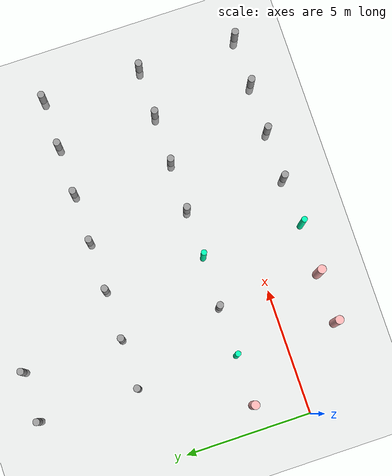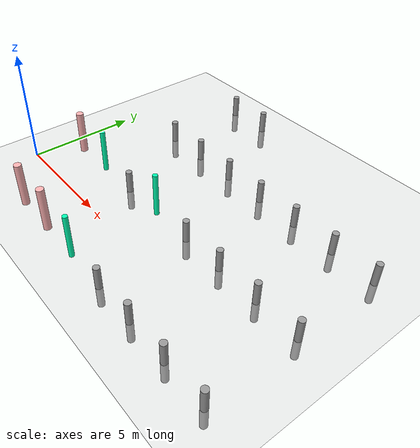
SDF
<sdf version="1.6">
 <world name="default">
  <model name="ground_plane">
   <static>1</static>
   <link name="link">
    <collision name="collision">
     <geometry><plane><normal>0 0 1</normal><size>100 100</size></plane></geometry>
     <surface><friction><ode><mu>100</mu><mu2>50</mu2></ode></friction></surface>
    </collision>
    <visual name="visual">
     <cast_shadows>0</cast_shadows>
     <geometry><plane><normal>0 0 1</normal><size>100 100</size></plane></geometry>
     <material>
      <script><uri>file://media/materials/scripts/gazebo.material</uri><name>Gazebo/Grey</name></script>
     </material>
    </visual>
   </link>
  </model>
  <model name="my_cylinder014_clone_60">
   <pose>9 -2 0 0 -0 0</pose>
   <link name="my_cylinder014::link">
    <inertial>
     <mass>1</mass>
     <inertia><ixx>0.145833</ixx><ixy>0</ixy><ixz>0</ixz><iyy>0.145833</iyy><iyz>0</iyz><izz>0.125</izz></inertia>
    </inertial>
    <visual name="visual">
     <geometry><cylinder><radius>0.14</radius><length>2</length></cylinder></geometry>
     <material>
      <script><name>Gazebo/Grey</name><uri>file://media/materials/scripts/gazebo.material</uri></script>
      <ambient>0.3 0.3 0.3 1</ambient>
      <diffuse>0.7 0.7 0.7 1</diffuse>
      <specular>1 0.01 0.01 1</specular>
      <emissive>0 0 0 1</emissive>
      <shader type="vertex"><normal_map>__default__</normal_map></shader>
     </material>
    </visual>
    <collision name="collision">
     <geometry><cylinder><radius>0.14</radius><length>2</length></cylinder></geometry>
     <surface>
      <friction>
       <ode><mu>1</mu><mu2>1</mu2><fdir1>0 0 0</fdir1><slip1>0</slip1><slip2>0</slip2></ode>
       <torsional>
        <coefficient>1</coefficient>
        <patch_radius>0</patch_radius>
        <surface_radius>0</surface_radius>
        <use_patch_radius>1</use_patch_radius>
        <ode><slip>0</slip></ode>
       </torsional>
      </friction>
      <bounce><restitution_coefficient>0</restitution_coefficient><threshold>1e+06</threshold></bounce>
      <contact>
       <collide_without_contact>0</collide_without_contact>
       <collide_without_contact_bitmask>1</collide_without_contact_bitmask>
       <collide_bitmask>1</collide_bitmask>
       <ode>
        <soft_cfm>0</soft_cfm>
        <soft_erp>0.2</soft_erp>
        <kp>1e+13</kp>
        <kd>1</kd>
        <max_vel>0.01</max_vel>
        <min_depth>0</min_depth>
       </ode>
       <bullet>
        <split_impulse>1</split_impulse>
        <split_impulse_penetration_threshold>-0.01</split_impulse_penetration_threshold>
        <soft_cfm>0</soft_cfm>
        <soft_erp>0.2</soft_erp>
        <kp>1e+13</kp>
        <kd>1</kd>
       </bullet>
      </contact>
     </surface>
    </collision>
   </link>
   <static>1</static>
  </model>
  <model name="my_cylinder014_clone_61">
   <pose>11 -2 0 0 -0 0</pose>
   <link name="my_cylinder014::link">
    <inertial>
     <mass>1</mass>
     <inertia><ixx>0.145833</ixx><ixy>0</ixy><ixz>0</ixz><iyy>0.145833</iyy><iyz>0</iyz><izz>0.125</izz></inertia>
    </inertial>
    <visual name="visual">
     <geometry><cylinder><radius>0.14</radius><length>2</length></cylinder></geometry>
     <material>
      <script><name>Gazebo/Grey</name><uri>file://media/materials/scripts/gazebo.material</uri></script>
      <ambient>0.3 0.3 0.3 1</ambient>
      <diffuse>0.7 0.7 0.7 1</diffuse>
      <specular>1 0.01 0.01 1</specular>
      <emissive>0 0 0 1</emissive>
      <shader type="vertex"><normal_map>__default__</normal_map></shader>
     </material>
    </visual>
    <collision name="collision">
     <geometry><cylinder><radius>0.14</radius><length>2</length></cylinder></geometry>
     <surface>
      <friction>
       <ode><mu>1</mu><mu2>1</mu2><fdir1>0 0 0</fdir1><slip1>0</slip1><slip2>0</slip2></ode>
       <torsional>
        <coefficient>1</coefficient>
        <patch_radius>0</patch_radius>
        <surface_radius>0</surface_radius>
        <use_patch_radius>1</use_patch_radius>
        <ode><slip>0</slip></ode>
       </torsional>
      </friction>
      <bounce><restitution_coefficient>0</restitution_coefficient><threshold>1e+06</threshold></bounce>
      <contact>
       <collide_without_contact>0</collide_without_contact>
       <collide_without_contact_bitmask>1</collide_without_contact_bitmask>
       <collide_bitmask>1</collide_bitmask>
       <ode>
        <soft_cfm>0</soft_cfm>
        <soft_erp>0.2</soft_erp>
        <kp>1e+13</kp>
        <kd>1</kd>
        <max_vel>0.01</max_vel>
        <min_depth>0</min_depth>
       </ode>
       <bullet>
        <split_impulse>1</split_impulse>
        <split_impulse_penetration_threshold>-0.01</split_impulse_penetration_threshold>
        <soft_cfm>0</soft_cfm>
        <soft_erp>0.2</soft_erp>
        <kp>1e+13</kp>
        <kd>1</kd>
       </bullet>
      </contact>
     </surface>
    </collision>
   </link>
   <static>1</static>
  </model>
  <model name="my_cylinder014_clone_62">
   <pose>13 -2 0 0 -0 0</pose>
   <link name="my_cylinder014::link">
    <inertial>
     <mass>1</mass>
     <inertia><ixx>0.145833</ixx><ixy>0</ixy><ixz>0</ixz><iyy>0.145833</iyy><iyz>0</iyz><izz>0.125</izz></inertia>
    </inertial>
    <visual name="visual">
     <geometry><cylinder><radius>0.14</radius><length>2</length></cylinder></geometry>
     <material>
      <script><name>Gazebo/Grey</name><uri>file://media/materials/scripts/gazebo.material</uri></script>
      <ambient>0.3 0.3 0.3 1</ambient>
      <diffuse>0.7 0.7 0.7 1</diffuse>
      <specular>1 0.01 0.01 1</specular>
      <emissive>0 0 0 1</emissive>
      <shader type="vertex"><normal_map>__default__</normal_map></shader>
     </material>
    </visual>
    <collision name="collision">
     <geometry><cylinder><radius>0.14</radius><length>2</length></cylinder></geometry>
     <surface>
      <friction>
       <ode><mu>1</mu><mu2>1</mu2><fdir1>0 0 0</fdir1><slip1>0</slip1><slip2>0</slip2></ode>
       <torsional>
        <coefficient>1</coefficient>
        <patch_radius>0</patch_radius>
        <surface_radius>0</surface_radius>
        <use_patch_radius>1</use_patch_radius>
        <ode><slip>0</slip></ode>
       </torsional>
      </friction>
      <bounce><restitution_coefficient>0</restitution_coefficient><threshold>1e+06</threshold></bounce>
      <contact>
       <collide_without_contact>0</collide_without_contact>
       <collide_without_contact_bitmask>1</collide_without_contact_bitmask>
       <collide_bitmask>1</collide_bitmask>
       <ode>
        <soft_cfm>0</soft_cfm>
        <soft_erp>0.2</soft_erp>
        <kp>1e+13</kp>
        <kd>1</kd>
        <max_vel>0.01</max_vel>
        <min_depth>0</min_depth>
       </ode>
       <bullet>
        <split_impulse>1</split_impulse>
        <split_impulse_penetration_threshold>-0.01</split_impulse_penetration_threshold>
        <soft_cfm>0</soft_cfm>
        <soft_erp>0.2</soft_erp>
        <kp>1e+13</kp>
        <kd>1</kd>
       </bullet>
      </contact>
     </surface>
    </collision>
   </link>
   <static>1</static>
  </model>
  <model name="my_cylinder014_clone_63">
   <pose>15 -2 0 0 -0 0</pose>
   <link name="my_cylinder014::link">
    <inertial>
     <mass>1</mass>
     <inertia><ixx>0.145833</ixx><ixy>0</ixy><ixz>0</ixz><iyy>0.145833</iyy><iyz>0</iyz><izz>0.125</izz></inertia>
    </inertial>
    <visual name="visual">
     <geometry><cylinder><radius>0.14</radius><length>2</length></cylinder></geometry>
     <material>
      <script><name>Gazebo/Grey</name><uri>file://media/materials/scripts/gazebo.material</uri></script>
      <ambient>0.3 0.3 0.3 1</ambient>
      <diffuse>0.7 0.7 0.7 1</diffuse>
      <specular>1 0.01 0.01 1</specular>
      <emissive>0 0 0 1</emissive>
      <shader type="vertex"><normal_map>__default__</normal_map></shader>
     </material>
    </visual>
    <collision name="collision">
     <geometry><cylinder><radius>0.14</radius><length>2</length></cylinder></geometry>
     <surface>
      <friction>
       <ode><mu>1</mu><mu2>1</mu2><fdir1>0 0 0</fdir1><slip1>0</slip1><slip2>0</slip2></ode>
       <torsional>
        <coefficient>1</coefficient>
        <patch_radius>0</patch_radius>
        <surface_radius>0</surface_radius>
        <use_patch_radius>1</use_patch_radius>
        <ode><slip>0</slip></ode>
       </torsional>
      </friction>
      <bounce><restitution_coefficient>0</restitution_coefficient><threshold>1e+06</threshold></bounce>
      <contact>
       <collide_without_contact>0</collide_without_contact>
       <collide_without_contact_bitmask>1</collide_without_contact_bitmask>
       <collide_bitmask>1</collide_bitmask>
       <ode>
        <soft_cfm>0</soft_cfm>
        <soft_erp>0.2</soft_erp>
        <kp>1e+13</kp>
        <kd>1</kd>
        <max_vel>0.01</max_vel>
        <min_depth>0</min_depth>
       </ode>
       <bullet>
        <split_impulse>1</split_impulse>
        <split_impulse_penetration_threshold>-0.01</split_impulse_penetration_threshold>
        <soft_cfm>0</soft_cfm>
        <soft_erp>0.2</soft_erp>
        <kp>1e+13</kp>
        <kd>1</kd>
       </bullet>
      </contact>
     </surface>
    </collision>
   </link>
   <static>1</static>
  </model>
  <model name="my_cylinder014_clone_74">
   <pose>5 2 0 0 -0 0</pose>
   <link name="my_cylinder014::link">
    <inertial>
     <mass>1</mass>
     <inertia><ixx>0.145833</ixx><ixy>0</ixy><ixz>0</ixz><iyy>0.145833</iyy><iyz>0</iyz><izz>0.125</izz></inertia>
    </inertial>
    <visual name="visual">
     <geometry><cylinder><radius>0.14</radius><length>2</length></cylinder></geometry>
     <material>
      <script><name>Gazebo/Grey</name><uri>file://media/materials/scripts/gazebo.material</uri></script>
      <ambient>0.3 0.3 0.3 1</ambient>
      <diffuse>0.7 0.7 0.7 1</diffuse>
      <specular>1 0.01 0.01 1</specular>
      <emissive>0 0 0 1</emissive>
      <shader type="vertex"><normal_map>__default__</normal_map></shader>
     </material>
    </visual>
    <collision name="collision">
     <geometry><cylinder><radius>0.14</radius><length>2</length></cylinder></geometry>
     <surface>
      <friction>
       <ode><mu>1</mu><mu2>1</mu2><fdir1>0 0 0</fdir1><slip1>0</slip1><slip2>0</slip2></ode>
       <torsional>
        <coefficient>1</coefficient>
        <patch_radius>0</patch_radius>
        <surface_radius>0</surface_radius>
        <use_patch_radius>1</use_patch_radius>
        <ode><slip>0</slip></ode>
       </torsional>
      </friction>
      <bounce><restitution_coefficient>0</restitution_coefficient><threshold>1e+06</threshold></bounce>
      <contact>
       <collide_without_contact>0</collide_without_contact>
       <collide_without_contact_bitmask>1</collide_without_contact_bitmask>
       <collide_bitmask>1</collide_bitmask>
       <ode>
        <soft_cfm>0</soft_cfm>
        <soft_erp>0.2</soft_erp>
        <kp>1e+13</kp>
        <kd>1</kd>
        <max_vel>0.01</max_vel>
        <min_depth>0</min_depth>
       </ode>
       <bullet>
        <split_impulse>1</split_impulse>
        <split_impulse_penetration_threshold>-0.01</split_impulse_penetration_threshold>
        <soft_cfm>0</soft_cfm>
        <soft_erp>0.2</soft_erp>
        <kp>1e+13</kp>
        <kd>1</kd>
       </bullet>
      </contact>
     </surface>
    </collision>
   </link>
   <static>1</static>
  </model>
  <model name="my_cylinder014_clone_76">
   <pose>9 2 0 0 -0 0</pose>
   <link name="my_cylinder014::link">
    <inertial>
     <mass>1</mass>
     <inertia><ixx>0.145833</ixx><ixy>0</ixy><ixz>0</ixz><iyy>0.145833</iyy><iyz>0</iyz><izz>0.125</izz></inertia>
    </inertial>
    <visual name="visual">
     <geometry><cylinder><radius>0.14</radius><length>2</length></cylinder></geometry>
     <material>
      <script><name>Gazebo/Grey</name><uri>file://media/materials/scripts/gazebo.material</uri></script>
      <ambient>0.3 0.3 0.3 1</ambient>
      <diffuse>0.7 0.7 0.7 1</diffuse>
      <specular>1 0.01 0.01 1</specular>
      <emissive>0 0 0 1</emissive>
      <shader type="vertex"><normal_map>__default__</normal_map></shader>
     </material>
    </visual>
    <collision name="collision">
     <geometry><cylinder><radius>0.14</radius><length>2</length></cylinder></geometry>
     <surface>
      <friction>
       <ode><mu>1</mu><mu2>1</mu2><fdir1>0 0 0</fdir1><slip1>0</slip1><slip2>0</slip2></ode>
       <torsional>
        <coefficient>1</coefficient>
        <patch_radius>0</patch_radius>
        <surface_radius>0</surface_radius>
        <use_patch_radius>1</use_patch_radius>
        <ode><slip>0</slip></ode>
       </torsional>
      </friction>
      <bounce><restitution_coefficient>0</restitution_coefficient><threshold>1e+06</threshold></bounce>
      <contact>
       <collide_without_contact>0</collide_without_contact>
       <collide_without_contact_bitmask>1</collide_without_contact_bitmask>
       <collide_bitmask>1</collide_bitmask>
       <ode>
        <soft_cfm>0</soft_cfm>
        <soft_erp>0.2</soft_erp>
        <kp>1e+13</kp>
        <kd>1</kd>
        <max_vel>0.01</max_vel>
        <min_depth>0</min_depth>
       </ode>
       <bullet>
        <split_impulse>1</split_impulse>
        <split_impulse_penetration_threshold>-0.01</split_impulse_penetration_threshold>
        <soft_cfm>0</soft_cfm>
        <soft_erp>0.2</soft_erp>
        <kp>1e+13</kp>
        <kd>1</kd>
       </bullet>
      </contact>
     </surface>
    </collision>
   </link>
   <static>1</static>
  </model>
  <model name="my_cylinder014_clone_77">
   <pose>11 2 0 0 -0 0</pose>
   <link name="my_cylinder014::link">
    <inertial>
     <mass>1</mass>
     <inertia><ixx>0.145833</ixx><ixy>0</ixy><ixz>0</ixz><iyy>0.145833</iyy><iyz>0</iyz><izz>0.125</izz></inertia>
    </inertial>
    <visual name="visual">
     <geometry><cylinder><radius>0.14</radius><length>2</length></cylinder></geometry>
     <material>
      <script><name>Gazebo/Grey</name><uri>file://media/materials/scripts/gazebo.material</uri></script>
      <ambient>0.3 0.3 0.3 1</ambient>
      <diffuse>0.7 0.7 0.7 1</diffuse>
      <specular>1 0.01 0.01 1</specular>
      <emissive>0 0 0 1</emissive>
      <shader type="vertex"><normal_map>__default__</normal_map></shader>
     </material>
    </visual>
    <collision name="collision">
     <geometry><cylinder><radius>0.14</radius><length>2</length></cylinder></geometry>
     <surface>
      <friction>
       <ode><mu>1</mu><mu2>1</mu2><fdir1>0 0 0</fdir1><slip1>0</slip1><slip2>0</slip2></ode>
       <torsional>
        <coefficient>1</coefficient>
        <patch_radius>0</patch_radius>
        <surface_radius>0</surface_radius>
        <use_patch_radius>1</use_patch_radius>
        <ode><slip>0</slip></ode>
       </torsional>
      </friction>
      <bounce><restitution_coefficient>0</restitution_coefficient><threshold>1e+06</threshold></bounce>
      <contact>
       <collide_without_contact>0</collide_without_contact>
       <collide_without_contact_bitmask>1</collide_without_contact_bitmask>
       <collide_bitmask>1</collide_bitmask>
       <ode>
        <soft_cfm>0</soft_cfm>
        <soft_erp>0.2</soft_erp>
        <kp>1e+13</kp>
        <kd>1</kd>
        <max_vel>0.01</max_vel>
        <min_depth>0</min_depth>
       </ode>
       <bullet>
        <split_impulse>1</split_impulse>
        <split_impulse_penetration_threshold>-0.01</split_impulse_penetration_threshold>
        <soft_cfm>0</soft_cfm>
        <soft_erp>0.2</soft_erp>
        <kp>1e+13</kp>
        <kd>1</kd>
       </bullet>
      </contact>
     </surface>
    </collision>
   </link>
   <static>1</static>
  </model>
  <model name="my_cylinder014_clone_78">
   <pose>13 2 0 0 -0 0</pose>
   <link name="my_cylinder014::link">
    <inertial>
     <mass>1</mass>
     <inertia><ixx>0.145833</ixx><ixy>0</ixy><ixz>0</ixz><iyy>0.145833</iyy><iyz>0</iyz><izz>0.125</izz></inertia>
    </inertial>
    <visual name="visual">
     <geometry><cylinder><radius>0.14</radius><length>2</length></cylinder></geometry>
     <material>
      <script><name>Gazebo/Grey</name><uri>file://media/materials/scripts/gazebo.material</uri></script>
      <ambient>0.3 0.3 0.3 1</ambient>
      <diffuse>0.7 0.7 0.7 1</diffuse>
      <specular>1 0.01 0.01 1</specular>
      <emissive>0 0 0 1</emissive>
      <shader type="vertex"><normal_map>__default__</normal_map></shader>
     </material>
    </visual>
    <collision name="collision">
     <geometry><cylinder><radius>0.14</radius><length>2</length></cylinder></geometry>
     <surface>
      <friction>
       <ode><mu>1</mu><mu2>1</mu2><fdir1>0 0 0</fdir1><slip1>0</slip1><slip2>0</slip2></ode>
       <torsional>
        <coefficient>1</coefficient>
        <patch_radius>0</patch_radius>
        <surface_radius>0</surface_radius>
        <use_patch_radius>1</use_patch_radius>
        <ode><slip>0</slip></ode>
       </torsional>
      </friction>
      <bounce><restitution_coefficient>0</restitution_coefficient><threshold>1e+06</threshold></bounce>
      <contact>
       <collide_without_contact>0</collide_without_contact>
       <collide_without_contact_bitmask>1</collide_without_contact_bitmask>
       <collide_bitmask>1</collide_bitmask>
       <ode>
        <soft_cfm>0</soft_cfm>
        <soft_erp>0.2</soft_erp>
        <kp>1e+13</kp>
        <kd>1</kd>
        <max_vel>0.01</max_vel>
        <min_depth>0</min_depth>
       </ode>
       <bullet>
        <split_impulse>1</split_impulse>
        <split_impulse_penetration_threshold>-0.01</split_impulse_penetration_threshold>
        <soft_cfm>0</soft_cfm>
        <soft_erp>0.2</soft_erp>
        <kp>1e+13</kp>
        <kd>1</kd>
       </bullet>
      </contact>
     </surface>
    </collision>
   </link>
   <static>1</static>
  </model>
  <model name="my_cylinder014_clone_79">
   <pose>15 2 0 0 -0 0</pose>
   <link name="my_cylinder014::link">
    <inertial>
     <mass>1</mass>
     <inertia><ixx>0.145833</ixx><ixy>0</ixy><ixz>0</ixz><iyy>0.145833</iyy><iyz>0</iyz><izz>0.125</izz></inertia>
    </inertial>
    <visual name="visual">
     <geometry><cylinder><radius>0.14</radius><length>2</length></cylinder></geometry>
     <material>
      <script><name>Gazebo/Grey</name><uri>file://media/materials/scripts/gazebo.material</uri></script>
      <ambient>0.3 0.3 0.3 1</ambient>
      <diffuse>0.7 0.7 0.7 1</diffuse>
      <specular>1 0.01 0.01 1</specular>
      <emissive>0 0 0 1</emissive>
      <shader type="vertex"><normal_map>__default__</normal_map></shader>
     </material>
    </visual>
    <collision name="collision">
     <geometry><cylinder><radius>0.14</radius><length>2</length></cylinder></geometry>
     <surface>
      <friction>
       <ode><mu>1</mu><mu2>1</mu2><fdir1>0 0 0</fdir1><slip1>0</slip1><slip2>0</slip2></ode>
       <torsional>
        <coefficient>1</coefficient>
        <patch_radius>0</patch_radius>
        <surface_radius>0</surface_radius>
        <use_patch_radius>1</use_patch_radius>
        <ode><slip>0</slip></ode>
       </torsional>
      </friction>
      <bounce><restitution_coefficient>0</restitution_coefficient><threshold>1e+06</threshold></bounce>
      <contact>
       <collide_without_contact>0</collide_without_contact>
       <collide_without_contact_bitmask>1</collide_without_contact_bitmask>
       <collide_bitmask>1</collide_bitmask>
       <ode>
        <soft_cfm>0</soft_cfm>
        <soft_erp>0.2</soft_erp>
        <kp>1e+13</kp>
        <kd>1</kd>
        <max_vel>0.01</max_vel>
        <min_depth>0</min_depth>
       </ode>
       <bullet>
        <split_impulse>1</split_impulse>
        <split_impulse_penetration_threshold>-0.01</split_impulse_penetration_threshold>
        <soft_cfm>0</soft_cfm>
        <soft_erp>0.2</soft_erp>
        <kp>1e+13</kp>
        <kd>1</kd>
       </bullet>
      </contact>
     </surface>
    </collision>
   </link>
   <static>1</static>
  </model>
  <model name="my_cylinder014_clone_89">
   <pose>3 6 0 0 -0 0</pose>
   <link name="my_cylinder014::link">
    <inertial>
     <mass>1</mass>
     <inertia><ixx>0.145833</ixx><ixy>0</ixy><ixz>0</ixz><iyy>0.145833</iyy><iyz>0</iyz><izz>0.125</izz></inertia>
    </inertial>
    <visual name="visual">
     <geometry><cylinder><radius>0.14</radius><length>2</length></cylinder></geometry>
     <material>
      <script><name>Gazebo/Grey</name><uri>file://media/materials/scripts/gazebo.material</uri></script>
      <ambient>0.3 0.3 0.3 1</ambient>
      <diffuse>0.7 0.7 0.7 1</diffuse>
      <specular>1 0.01 0.01 1</specular>
      <emissive>0 0 0 1</emissive>
      <shader type="vertex"><normal_map>__default__</normal_map></shader>
     </material>
    </visual>
    <collision name="collision">
     <geometry><cylinder><radius>0.14</radius><length>2</length></cylinder></geometry>
     <surface>
      <friction>
       <ode><mu>1</mu><mu2>1</mu2><fdir1>0 0 0</fdir1><slip1>0</slip1><slip2>0</slip2></ode>
       <torsional>
        <coefficient>1</coefficient>
        <patch_radius>0</patch_radius>
        <surface_radius>0</surface_radius>
        <use_patch_radius>1</use_patch_radius>
        <ode><slip>0</slip></ode>
       </torsional>
      </friction>
      <bounce><restitution_coefficient>0</restitution_coefficient><threshold>1e+06</threshold></bounce>
      <contact>
       <collide_without_contact>0</collide_without_contact>
       <collide_without_contact_bitmask>1</collide_without_contact_bitmask>
       <collide_bitmask>1</collide_bitmask>
       <ode>
        <soft_cfm>0</soft_cfm>
        <soft_erp>0.2</soft_erp>
        <kp>1e+13</kp>
        <kd>1</kd>
        <max_vel>0.01</max_vel>
        <min_depth>0</min_depth>
       </ode>
       <bullet>
        <split_impulse>1</split_impulse>
        <split_impulse_penetration_threshold>-0.01</split_impulse_penetration_threshold>
        <soft_cfm>0</soft_cfm>
        <soft_erp>0.2</soft_erp>
        <kp>1e+13</kp>
        <kd>1</kd>
       </bullet>
      </contact>
     </surface>
    </collision>
   </link>
   <static>1</static>
  </model>
  <model name="my_cylinder014_clone_90">
   <pose>5 6 0 0 -0 0</pose>
   <link name="my_cylinder014::link">
    <inertial>
     <mass>1</mass>
     <inertia><ixx>0.145833</ixx><ixy>0</ixy><ixz>0</ixz><iyy>0.145833</iyy><iyz>0</iyz><izz>0.125</izz></inertia>
    </inertial>
    <visual name="visual">
     <geometry><cylinder><radius>0.14</radius><length>2</length></cylinder></geometry>
     <material>
      <script><name>Gazebo/Grey</name><uri>file://media/materials/scripts/gazebo.material</uri></script>
      <ambient>0.3 0.3 0.3 1</ambient>
      <diffuse>0.7 0.7 0.7 1</diffuse>
      <specular>1 0.01 0.01 1</specular>
      <emissive>0 0 0 1</emissive>
      <shader type="vertex"><normal_map>__default__</normal_map></shader>
     </material>
    </visual>
    <collision name="collision">
     <geometry><cylinder><radius>0.14</radius><length>2</length></cylinder></geometry>
     <surface>
      <friction>
       <ode><mu>1</mu><mu2>1</mu2><fdir1>0 0 0</fdir1><slip1>0</slip1><slip2>0</slip2></ode>
       <torsional>
        <coefficient>1</coefficient>
        <patch_radius>0</patch_radius>
        <surface_radius>0</surface_radius>
        <use_patch_radius>1</use_patch_radius>
        <ode><slip>0</slip></ode>
       </torsional>
      </friction>
      <bounce><restitution_coefficient>0</restitution_coefficient><threshold>1e+06</threshold></bounce>
      <contact>
       <collide_without_contact>0</collide_without_contact>
       <collide_without_contact_bitmask>1</collide_without_contact_bitmask>
       <collide_bitmask>1</collide_bitmask>
       <ode>
        <soft_cfm>0</soft_cfm>
        <soft_erp>0.2</soft_erp>
        <kp>1e+13</kp>
        <kd>1</kd>
        <max_vel>0.01</max_vel>
        <min_depth>0</min_depth>
       </ode>
       <bullet>
        <split_impulse>1</split_impulse>
        <split_impulse_penetration_threshold>-0.01</split_impulse_penetration_threshold>
        <soft_cfm>0</soft_cfm>
        <soft_erp>0.2</soft_erp>
        <kp>1e+13</kp>
        <kd>1</kd>
       </bullet>
      </contact>
     </surface>
    </collision>
   </link>
   <static>1</static>
  </model>
  <model name="my_cylinder014_clone_91">
   <pose>7 6 0 0 -0 0</pose>
   <link name="my_cylinder014::link">
    <inertial>
     <mass>1</mass>
     <inertia><ixx>0.145833</ixx><ixy>0</ixy><ixz>0</ixz><iyy>0.145833</iyy><iyz>0</iyz><izz>0.125</izz></inertia>
    </inertial>
    <visual name="visual">
     <geometry><cylinder><radius>0.14</radius><length>2</length></cylinder></geometry>
     <material>
      <script><name>Gazebo/Grey</name><uri>file://media/materials/scripts/gazebo.material</uri></script>
      <ambient>0.3 0.3 0.3 1</ambient>
      <diffuse>0.7 0.7 0.7 1</diffuse>
      <specular>1 0.01 0.01 1</specular>
      <emissive>0 0 0 1</emissive>
      <shader type="vertex"><normal_map>__default__</normal_map></shader>
     </material>
    </visual>
    <collision name="collision">
     <geometry><cylinder><radius>0.14</radius><length>2</length></cylinder></geometry>
     <surface>
      <friction>
       <ode><mu>1</mu><mu2>1</mu2><fdir1>0 0 0</fdir1><slip1>0</slip1><slip2>0</slip2></ode>
       <torsional>
        <coefficient>1</coefficient>
        <patch_radius>0</patch_radius>
        <surface_radius>0</surface_radius>
        <use_patch_radius>1</use_patch_radius>
        <ode><slip>0</slip></ode>
       </torsional>
      </friction>
      <bounce><restitution_coefficient>0</restitution_coefficient><threshold>1e+06</threshold></bounce>
      <contact>
       <collide_without_contact>0</collide_without_contact>
       <collide_without_contact_bitmask>1</collide_without_contact_bitmask>
       <collide_bitmask>1</collide_bitmask>
       <ode>
        <soft_cfm>0</soft_cfm>
        <soft_erp>0.2</soft_erp>
        <kp>1e+13</kp>
        <kd>1</kd>
        <max_vel>0.01</max_vel>
        <min_depth>0</min_depth>
       </ode>
       <bullet>
        <split_impulse>1</split_impulse>
        <split_impulse_penetration_threshold>-0.01</split_impulse_penetration_threshold>
        <soft_cfm>0</soft_cfm>
        <soft_erp>0.2</soft_erp>
        <kp>1e+13</kp>
        <kd>1</kd>
       </bullet>
      </contact>
     </surface>
    </collision>
   </link>
   <static>1</static>
  </model>
  <model name="my_cylinder014_clone_92">
   <pose>9 6 0 0 -0 0</pose>
   <link name="my_cylinder014::link">
    <inertial>
     <mass>1</mass>
     <inertia><ixx>0.145833</ixx><ixy>0</ixy><ixz>0</ixz><iyy>0.145833</iyy><iyz>0</iyz><izz>0.125</izz></inertia>
    </inertial>
    <visual name="visual">
     <geometry><cylinder><radius>0.14</radius><length>2</length></cylinder></geometry>
     <material>
      <script><name>Gazebo/Grey</name><uri>file://media/materials/scripts/gazebo.material</uri></script>
      <ambient>0.3 0.3 0.3 1</ambient>
      <diffuse>0.7 0.7 0.7 1</diffuse>
      <specular>1 0.01 0.01 1</specular>
      <emissive>0 0 0 1</emissive>
      <shader type="vertex"><normal_map>__default__</normal_map></shader>
     </material>
    </visual>
    <collision name="collision">
     <geometry><cylinder><radius>0.14</radius><length>2</length></cylinder></geometry>
     <surface>
      <friction>
       <ode><mu>1</mu><mu2>1</mu2><fdir1>0 0 0</fdir1><slip1>0</slip1><slip2>0</slip2></ode>
       <torsional>
        <coefficient>1</coefficient>
        <patch_radius>0</patch_radius>
        <surface_radius>0</surface_radius>
        <use_patch_radius>1</use_patch_radius>
        <ode><slip>0</slip></ode>
       </torsional>
      </friction>
      <bounce><restitution_coefficient>0</restitution_coefficient><threshold>1e+06</threshold></bounce>
      <contact>
       <collide_without_contact>0</collide_without_contact>
       <collide_without_contact_bitmask>1</collide_without_contact_bitmask>
       <collide_bitmask>1</collide_bitmask>
       <ode>
        <soft_cfm>0</soft_cfm>
        <soft_erp>0.2</soft_erp>
        <kp>1e+13</kp>
        <kd>1</kd>
        <max_vel>0.01</max_vel>
        <min_depth>0</min_depth>
       </ode>
       <bullet>
        <split_impulse>1</split_impulse>
        <split_impulse_penetration_threshold>-0.01</split_impulse_penetration_threshold>
        <soft_cfm>0</soft_cfm>
        <soft_erp>0.2</soft_erp>
        <kp>1e+13</kp>
        <kd>1</kd>
       </bullet>
      </contact>
     </surface>
    </collision>
   </link>
   <static>1</static>
  </model>
  <model name="my_cylinder014_clone_93">
   <pose>11 6 0 0 -0 0</pose>
   <link name="my_cylinder014::link">
    <inertial>
     <mass>1</mass>
     <inertia><ixx>0.145833</ixx><ixy>0</ixy><ixz>0</ixz><iyy>0.145833</iyy><iyz>0</iyz><izz>0.125</izz></inertia>
    </inertial>
    <visual name="visual">
     <geometry><cylinder><radius>0.14</radius><length>2</length></cylinder></geometry>
     <material>
      <script><name>Gazebo/Grey</name><uri>file://media/materials/scripts/gazebo.material</uri></script>
      <ambient>0.3 0.3 0.3 1</ambient>
      <diffuse>0.7 0.7 0.7 1</diffuse>
      <specular>1 0.01 0.01 1</specular>
      <emissive>0 0 0 1</emissive>
      <shader type="vertex"><normal_map>__default__</normal_map></shader>
     </material>
    </visual>
    <collision name="collision">
     <geometry><cylinder><radius>0.14</radius><length>2</length></cylinder></geometry>
     <surface>
      <friction>
       <ode><mu>1</mu><mu2>1</mu2><fdir1>0 0 0</fdir1><slip1>0</slip1><slip2>0</slip2></ode>
       <torsional>
        <coefficient>1</coefficient>
        <patch_radius>0</patch_radius>
        <surface_radius>0</surface_radius>
        <use_patch_radius>1</use_patch_radius>
        <ode><slip>0</slip></ode>
       </torsional>
      </friction>
      <bounce><restitution_coefficient>0</restitution_coefficient><threshold>1e+06</threshold></bounce>
      <contact>
       <collide_without_contact>0</collide_without_contact>
       <collide_without_contact_bitmask>1</collide_without_contact_bitmask>
       <collide_bitmask>1</collide_bitmask>
       <ode>
        <soft_cfm>0</soft_cfm>
        <soft_erp>0.2</soft_erp>
        <kp>1e+13</kp>
        <kd>1</kd>
        <max_vel>0.01</max_vel>
        <min_depth>0</min_depth>
       </ode>
       <bullet>
        <split_impulse>1</split_impulse>
        <split_impulse_penetration_threshold>-0.01</split_impulse_penetration_threshold>
        <soft_cfm>0</soft_cfm>
        <soft_erp>0.2</soft_erp>
        <kp>1e+13</kp>
        <kd>1</kd>
       </bullet>
      </contact>
     </surface>
    </collision>
   </link>
   <static>1</static>
  </model>
  <model name="my_cylinder014_clone_94">
   <pose>13 6 0 0 -0 0</pose>
   <link name="my_cylinder014::link">
    <inertial>
     <mass>1</mass>
     <inertia><ixx>0.145833</ixx><ixy>0</ixy><ixz>0</ixz><iyy>0.145833</iyy><iyz>0</iyz><izz>0.125</izz></inertia>
    </inertial>
    <visual name="visual">
     <geometry><cylinder><radius>0.14</radius><length>2</length></cylinder></geometry>
     <material>
      <script><name>Gazebo/Grey</name><uri>file://media/materials/scripts/gazebo.material</uri></script>
      <ambient>0.3 0.3 0.3 1</ambient>
      <diffuse>0.7 0.7 0.7 1</diffuse>
      <specular>1 0.01 0.01 1</specular>
      <emissive>0 0 0 1</emissive>
      <shader type="vertex"><normal_map>__default__</normal_map></shader>
     </material>
    </visual>
    <collision name="collision">
     <geometry><cylinder><radius>0.14</radius><length>2</length></cylinder></geometry>
     <surface>
      <friction>
       <ode><mu>1</mu><mu2>1</mu2><fdir1>0 0 0</fdir1><slip1>0</slip1><slip2>0</slip2></ode>
       <torsional>
        <coefficient>1</coefficient>
        <patch_radius>0</patch_radius>
        <surface_radius>0</surface_radius>
        <use_patch_radius>1</use_patch_radius>
        <ode><slip>0</slip></ode>
       </torsional>
      </friction>
      <bounce><restitution_coefficient>0</restitution_coefficient><threshold>1e+06</threshold></bounce>
      <contact>
       <collide_without_contact>0</collide_without_contact>
       <collide_without_contact_bitmask>1</collide_without_contact_bitmask>
       <collide_bitmask>1</collide_bitmask>
       <ode>
        <soft_cfm>0</soft_cfm>
        <soft_erp>0.2</soft_erp>
        <kp>1e+13</kp>
        <kd>1</kd>
        <max_vel>0.01</max_vel>
        <min_depth>0</min_depth>
       </ode>
       <bullet>
        <split_impulse>1</split_impulse>
        <split_impulse_penetration_threshold>-0.01</split_impulse_penetration_threshold>
        <soft_cfm>0</soft_cfm>
        <soft_erp>0.2</soft_erp>
        <kp>1e+13</kp>
        <kd>1</kd>
       </bullet>
      </contact>
     </surface>
    </collision>
   </link>
   <static>1</static>
  </model>
  <model name="my_cylinder014_clone_95">
   <pose>15 6 0 0 -0 0</pose>
   <link name="my_cylinder014::link">
    <inertial>
     <mass>1</mass>
     <inertia><ixx>0.145833</ixx><ixy>0</ixy><ixz>0</ixz><iyy>0.145833</iyy><iyz>0</iyz><izz>0.125</izz></inertia>
    </inertial>
    <visual name="visual">
     <geometry><cylinder><radius>0.14</radius><length>2</length></cylinder></geometry>
     <material>
      <script><name>Gazebo/Grey</name><uri>file://media/materials/scripts/gazebo.material</uri></script>
      <ambient>0.3 0.3 0.3 1</ambient>
      <diffuse>0.7 0.7 0.7 1</diffuse>
      <specular>1 0.01 0.01 1</specular>
      <emissive>0 0 0 1</emissive>
      <shader type="vertex"><normal_map>__default__</normal_map></shader>
     </material>
    </visual>
    <collision name="collision">
     <geometry><cylinder><radius>0.14</radius><length>2</length></cylinder></geometry>
     <surface>
      <friction>
       <ode><mu>1</mu><mu2>1</mu2><fdir1>0 0 0</fdir1><slip1>0</slip1><slip2>0</slip2></ode>
       <torsional>
        <coefficient>1</coefficient>
        <patch_radius>0</patch_radius>
        <surface_radius>0</surface_radius>
        <use_patch_radius>1</use_patch_radius>
        <ode><slip>0</slip></ode>
       </torsional>
      </friction>
      <bounce><restitution_coefficient>0</restitution_coefficient><threshold>1e+06</threshold></bounce>
      <contact>
       <collide_without_contact>0</collide_without_contact>
       <collide_without_contact_bitmask>1</collide_without_contact_bitmask>
       <collide_bitmask>1</collide_bitmask>
       <ode>
        <soft_cfm>0</soft_cfm>
        <soft_erp>0.2</soft_erp>
        <kp>1e+13</kp>
        <kd>1</kd>
        <max_vel>0.01</max_vel>
        <min_depth>0</min_depth>
       </ode>
       <bullet>
        <split_impulse>1</split_impulse>
        <split_impulse_penetration_threshold>-0.01</split_impulse_penetration_threshold>
        <soft_cfm>0</soft_cfm>
        <soft_erp>0.2</soft_erp>
        <kp>1e+13</kp>
        <kd>1</kd>
       </bullet>
      </contact>
     </surface>
    </collision>
   </link>
   <static>1</static>
  </model>
  <model name="my_cylinder014_clone_105">
   <pose>3 10 0 0 -0 0</pose>
   <link name="my_cylinder014::link">
    <inertial>
     <mass>1</mass>
     <inertia><ixx>0.145833</ixx><ixy>0</ixy><ixz>0</ixz><iyy>0.145833</iyy><iyz>0</iyz><izz>0.125</izz></inertia>
    </inertial>
    <visual name="visual">
     <geometry><cylinder><radius>0.14</radius><length>2</length></cylinder></geometry>
     <material>
      <script><name>Gazebo/Grey</name><uri>file://media/materials/scripts/gazebo.material</uri></script>
      <ambient>0.3 0.3 0.3 1</ambient>
      <diffuse>0.7 0.7 0.7 1</diffuse>
      <specular>1 0.01 0.01 1</specular>
      <emissive>0 0 0 1</emissive>
      <shader type="vertex"><normal_map>__default__</normal_map></shader>
     </material>
    </visual>
    <collision name="collision">
     <geometry><cylinder><radius>0.14</radius><length>2</length></cylinder></geometry>
     <surface>
      <friction>
       <ode><mu>1</mu><mu2>1</mu2><fdir1>0 0 0</fdir1><slip1>0</slip1><slip2>0</slip2></ode>
       <torsional>
        <coefficient>1</coefficient>
        <patch_radius>0</patch_radius>
        <surface_radius>0</surface_radius>
        <use_patch_radius>1</use_patch_radius>
        <ode><slip>0</slip></ode>
       </torsional>
      </friction>
      <bounce><restitution_coefficient>0</restitution_coefficient><threshold>1e+06</threshold></bounce>
      <contact>
       <collide_without_contact>0</collide_without_contact>
       <collide_without_contact_bitmask>1</collide_without_contact_bitmask>
       <collide_bitmask>1</collide_bitmask>
       <ode>
        <soft_cfm>0</soft_cfm>
        <soft_erp>0.2</soft_erp>
        <kp>1e+13</kp>
        <kd>1</kd>
        <max_vel>0.01</max_vel>
        <min_depth>0</min_depth>
       </ode>
       <bullet>
        <split_impulse>1</split_impulse>
        <split_impulse_penetration_threshold>-0.01</split_impulse_penetration_threshold>
        <soft_cfm>0</soft_cfm>
        <soft_erp>0.2</soft_erp>
        <kp>1e+13</kp>
        <kd>1</kd>
       </bullet>
      </contact>
     </surface>
    </collision>
   </link>
   <static>1</static>
  </model>
  <model name="my_cylinder014_clone_106">
   <pose>5 10 0 0 -0 0</pose>
   <link name="my_cylinder014::link">
    <inertial>
     <mass>1</mass>
     <inertia><ixx>0.145833</ixx><ixy>0</ixy><ixz>0</ixz><iyy>0.145833</iyy><iyz>0</iyz><izz>0.125</izz></inertia>
    </inertial>
    <visual name="visual">
     <geometry><cylinder><radius>0.14</radius><length>2</length></cylinder></geometry>
     <material>
      <script><name>Gazebo/Grey</name><uri>file://media/materials/scripts/gazebo.material</uri></script>
      <ambient>0.3 0.3 0.3 1</ambient>
      <diffuse>0.7 0.7 0.7 1</diffuse>
      <specular>1 0.01 0.01 1</specular>
      <emissive>0 0 0 1</emissive>
      <shader type="vertex"><normal_map>__default__</normal_map></shader>
     </material>
    </visual>
    <collision name="collision">
     <geometry><cylinder><radius>0.14</radius><length>2</length></cylinder></geometry>
     <surface>
      <friction>
       <ode><mu>1</mu><mu2>1</mu2><fdir1>0 0 0</fdir1><slip1>0</slip1><slip2>0</slip2></ode>
       <torsional>
        <coefficient>1</coefficient>
        <patch_radius>0</patch_radius>
        <surface_radius>0</surface_radius>
        <use_patch_radius>1</use_patch_radius>
        <ode><slip>0</slip></ode>
       </torsional>
      </friction>
      <bounce><restitution_coefficient>0</restitution_coefficient><threshold>1e+06</threshold></bounce>
      <contact>
       <collide_without_contact>0</collide_without_contact>
       <collide_without_contact_bitmask>1</collide_without_contact_bitmask>
       <collide_bitmask>1</collide_bitmask>
       <ode>
        <soft_cfm>0</soft_cfm>
        <soft_erp>0.2</soft_erp>
        <kp>1e+13</kp>
        <kd>1</kd>
        <max_vel>0.01</max_vel>
        <min_depth>0</min_depth>
       </ode>
       <bullet>
        <split_impulse>1</split_impulse>
        <split_impulse_penetration_threshold>-0.01</split_impulse_penetration_threshold>
        <soft_cfm>0</soft_cfm>
        <soft_erp>0.2</soft_erp>
        <kp>1e+13</kp>
        <kd>1</kd>
       </bullet>
      </contact>
     </surface>
    </collision>
   </link>
   <static>1</static>
  </model>
  <model name="my_cylinder0168_0">
   <link name="link">
    <inertial>
     <mass>1</mass>
     <inertia><ixx>0.145833</ixx><ixy>0</ixy><ixz>0</ixz><iyy>0.145833</iyy><iyz>0</iyz><izz>0.125</izz></inertia>
    </inertial>
    <visual name="visual">
     <geometry><cylinder><radius>0.168</radius><length>2</length></cylinder></geometry>
     <material>
      <script><name>Gazebo/Grey</name><uri>file://media/materials/scripts/gazebo.material</uri></script>
      <ambient>1 0.3 0.3 1</ambient>
      <diffuse>1 0.7 0.7 1</diffuse>
      <specular>1 0.01 0.01 1</specular>
      <emissive>1 0 0 1</emissive>
      <shader type="vertex"><normal_map>__default__</normal_map></shader>
     </material>
    </visual>
    <collision name="collision">
     <geometry><cylinder><radius>0.168</radius><length>2</length></cylinder></geometry>
     <surface>
      <friction>
       <ode><mu>1</mu><mu2>1</mu2><fdir1>0 0 0</fdir1><slip1>0</slip1><slip2>0</slip2></ode>
       <torsional>
        <coefficient>1</coefficient>
        <patch_radius>0</patch_radius>
        <surface_radius>0</surface_radius>
        <use_patch_radius>1</use_patch_radius>
        <ode><slip>0</slip></ode>
       </torsional>
      </friction>
      <bounce><restitution_coefficient>0</restitution_coefficient><threshold>1e+06</threshold></bounce>
      <contact>
       <collide_without_contact>0</collide_without_contact>
       <collide_without_contact_bitmask>1</collide_without_contact_bitmask>
       <collide_bitmask>1</collide_bitmask>
       <ode>
        <soft_cfm>0</soft_cfm>
        <soft_erp>0.2</soft_erp>
        <kp>1e+13</kp>
        <kd>1</kd>
        <max_vel>0.01</max_vel>
        <min_depth>0</min_depth>
       </ode>
       <bullet>
        <split_impulse>1</split_impulse>
        <split_impulse_penetration_threshold>-0.01</split_impulse_penetration_threshold>
        <soft_cfm>0</soft_cfm>
        <soft_erp>0.2</soft_erp>
        <kp>1e+13</kp>
        <kd>1</kd>
       </bullet>
      </contact>
     </surface>
    </collision>
   </link>
   <static>0</static>
   <pose>3 -2 0.999995 0 -0 0.000217</pose>
  </model>
  <model name="my_cylinder0112">
   <link name="link">
    <inertial>
     <mass>1</mass>
     <inertia><ixx>0.145833</ixx><ixy>0</ixy><ixz>0</ixz><iyy>0.145833</iyy><iyz>0</iyz><izz>0.125</izz></inertia>
    </inertial>
    <visual name="visual">
     <geometry><cylinder><radius>0.112</radius><length>2</length></cylinder></geometry>
     <material>
      <script><name>Gazebo/Grey</name><uri>file://media/materials/scripts/gazebo.material</uri></script>
      <ambient>0 1 0.3 1</ambient>
      <diffuse>0 1 0.7 1</diffuse>
      <specular>1 1 0.01 1</specular>
      <emissive>0 0 0 1</emissive>
      <shader type="vertex"><normal_map>__default__</normal_map></shader>
     </material>
    </visual>
    <collision name="collision">
     <geometry><cylinder><radius>0.112</radius><length>2</length></cylinder></geometry>
     <surface>
      <friction>
       <ode><mu>1</mu><mu2>1</mu2><fdir1>0 0 0</fdir1><slip1>0</slip1><slip2>0</slip2></ode>
       <torsional>
        <coefficient>1</coefficient>
        <patch_radius>0</patch_radius>
        <surface_radius>0</surface_radius>
        <use_patch_radius>1</use_patch_radius>
        <ode><slip>0</slip></ode>
       </torsional>
      </friction>
      <bounce><restitution_coefficient>0</restitution_coefficient><threshold>1e+06</threshold></bounce>
      <contact>
       <collide_without_contact>0</collide_without_contact>
       <collide_without_contact_bitmask>1</collide_without_contact_bitmask>
       <collide_bitmask>1</collide_bitmask>
       <ode>
        <soft_cfm>0</soft_cfm>
        <soft_erp>0.2</soft_erp>
        <kp>1e+13</kp>
        <kd>1</kd>
        <max_vel>0.01</max_vel>
        <min_depth>0</min_depth>
       </ode>
       <bullet>
        <split_impulse>1</split_impulse>
        <split_impulse_penetration_threshold>-0.01</split_impulse_penetration_threshold>
        <soft_cfm>0</soft_cfm>
        <soft_erp>0.2</soft_erp>
        <kp>1e+13</kp>
        <kd>1</kd>
       </bullet>
      </contact>
     </surface>
    </collision>
   </link>
   <static>0</static>
   <pose>3.00004 2.00004 0.999993 0 0 -0.00133</pose>
  </model>
  <model name="my_cylinder0112_0">
   <link name="link">
    <inertial>
     <mass>1</mass>
     <inertia><ixx>0.145833</ixx><ixy>0</ixy><ixz>0</ixz><iyy>0.145833</iyy><iyz>0</iyz><izz>0.125</izz></inertia>
    </inertial>
    <visual name="visual">
     <geometry><cylinder><radius>0.112</radius><length>2</length></cylinder></geometry>
     <material>
      <script><name>Gazebo/Grey</name><uri>file://media/materials/scripts/gazebo.material</uri></script>
      <ambient>0 1 0.3 1</ambient>
      <diffuse>0 1 0.7 1</diffuse>
      <specular>1 1 0.01 1</specular>
      <emissive>0 0 0 1</emissive>
      <shader type="vertex"><normal_map>__default__</normal_map></shader>
     </material>
    </visual>
    <collision name="collision">
     <geometry><cylinder><radius>0.112</radius><length>2</length></cylinder></geometry>
     <surface>
      <friction>
       <ode><mu>1</mu><mu2>1</mu2><fdir1>0 0 0</fdir1><slip1>0</slip1><slip2>0</slip2></ode>
       <torsional>
        <coefficient>1</coefficient>
        <patch_radius>0</patch_radius>
        <surface_radius>0</surface_radius>
        <use_patch_radius>1</use_patch_radius>
        <ode><slip>0</slip></ode>
       </torsional>
      </friction>
      <bounce><restitution_coefficient>0</restitution_coefficient><threshold>1e+06</threshold></bounce>
      <contact>
       <collide_without_contact>0</collide_without_contact>
       <collide_without_contact_bitmask>1</collide_without_contact_bitmask>
       <collide_bitmask>1</collide_bitmask>
       <ode>
        <soft_cfm>0</soft_cfm>
        <soft_erp>0.2</soft_erp>
        <kp>1e+13</kp>
        <kd>1</kd>
        <max_vel>0.01</max_vel>
        <min_depth>0</min_depth>
       </ode>
       <bullet>
        <split_impulse>1</split_impulse>
        <split_impulse_penetration_threshold>-0.01</split_impulse_penetration_threshold>
        <soft_cfm>0</soft_cfm>
        <soft_erp>0.2</soft_erp>
        <kp>1e+13</kp>
        <kd>1</kd>
       </bullet>
      </contact>
     </surface>
    </collision>
   </link>
   <static>0</static>
   <pose>7.00004 2.00004 0.999993 0 0 -0.001227</pose>
  </model>
  <model name="my_cylinder0112_1">
   <link name="link">
    <inertial>
     <mass>1</mass>
     <inertia><ixx>0.145833</ixx><ixy>0</ixy><ixz>0</ixz><iyy>0.145833</iyy><iyz>0</iyz><izz>0.125</izz></inertia>
    </inertial>
    <visual name="visual">
     <geometry><cylinder><radius>0.112</radius><length>2</length></cylinder></geometry>
     <material>
      <script><name>Gazebo/Grey</name><uri>file://media/materials/scripts/gazebo.material</uri></script>
      <ambient>0 1 0.3 1</ambient>
      <diffuse>0 1 0.7 1</diffuse>
      <specular>1 1 0.01 1</specular>
      <emissive>0 0 0 1</emissive>
      <shader type="vertex"><normal_map>__default__</normal_map></shader>
     </material>
    </visual>
    <collision name="collision">
     <geometry><cylinder><radius>0.112</radius><length>2</length></cylinder></geometry>
     <surface>
      <friction>
       <ode><mu>1</mu><mu2>1</mu2><fdir1>0 0 0</fdir1><slip1>0</slip1><slip2>0</slip2></ode>
       <torsional>
        <coefficient>1</coefficient>
        <patch_radius>0</patch_radius>
        <surface_radius>0</surface_radius>
        <use_patch_radius>1</use_patch_radius>
        <ode><slip>0</slip></ode>
       </torsional>
      </friction>
      <bounce><restitution_coefficient>0</restitution_coefficient><threshold>1e+06</threshold></bounce>
      <contact>
       <collide_without_contact>0</collide_without_contact>
       <collide_without_contact_bitmask>1</collide_without_contact_bitmask>
       <collide_bitmask>1</collide_bitmask>
       <ode>
        <soft_cfm>0</soft_cfm>
        <soft_erp>0.2</soft_erp>
        <kp>1e+13</kp>
        <kd>1</kd>
        <max_vel>0.01</max_vel>
        <min_depth>0</min_depth>
       </ode>
       <bullet>
        <split_impulse>1</split_impulse>
        <split_impulse_penetration_threshold>-0.01</split_impulse_penetration_threshold>
        <soft_cfm>0</soft_cfm>
        <soft_erp>0.2</soft_erp>
        <kp>1e+13</kp>
        <kd>1</kd>
       </bullet>
      </contact>
     </surface>
    </collision>
   </link>
   <static>0</static>
   <pose>7.00003 -1.99997 0.999997 0 0 -0.001133</pose>
  </model>
  <model name="my_cylinder0168_1">
   <link name="link">
    <inertial>
     <mass>1</mass>
     <inertia><ixx>0.145833</ixx><ixy>0</ixy><ixz>0</ixz><iyy>0.145833</iyy><iyz>0</iyz><izz>0.125</izz></inertia>
    </inertial>
    <visual name="visual">
     <geometry><cylinder><radius>0.168</radius><length>2</length></cylinder></geometry>
     <material>
      <script><name>Gazebo/Grey</name><uri>file://media/materials/scripts/gazebo.material</uri></script>
      <ambient>1 0.3 0.3 1</ambient>
      <diffuse>1 0.7 0.7 1</diffuse>
      <specular>1 0.01 0.01 1</specular>
      <emissive>1 0 0 1</emissive>
      <shader type="vertex"><normal_map>__default__</normal_map></shader>
     </material>
    </visual>
    <collision name="collision">
     <geometry><cylinder><radius>0.168</radius><length>2</length></cylinder></geometry>
     <surface>
      <friction>
       <ode><mu>1</mu><mu2>1</mu2><fdir1>0 0 0</fdir1><slip1>0</slip1><slip2>0</slip2></ode>
       <torsional>
        <coefficient>1</coefficient>
        <patch_radius>0</patch_radius>
        <surface_radius>0</surface_radius>
        <use_patch_radius>1</use_patch_radius>
        <ode><slip>0</slip></ode>
       </torsional>
      </friction>
      <bounce><restitution_coefficient>0</restitution_coefficient><threshold>1e+06</threshold></bounce>
      <contact>
       <collide_without_contact>0</collide_without_contact>
       <collide_without_contact_bitmask>1</collide_without_contact_bitmask>
       <collide_bitmask>1</collide_bitmask>
       <ode>
        <soft_cfm>0</soft_cfm>
        <soft_erp>0.2</soft_erp>
        <kp>1e+13</kp>
        <kd>1</kd>
        <max_vel>0.01</max_vel>
        <min_depth>0</min_depth>
       </ode>
       <bullet>
        <split_impulse>1</split_impulse>
        <split_impulse_penetration_threshold>-0.01</split_impulse_penetration_threshold>
        <soft_cfm>0</soft_cfm>
        <soft_erp>0.2</soft_erp>
        <kp>1e+13</kp>
        <kd>1</kd>
       </bullet>
      </contact>
     </surface>
    </collision>
   </link>
   <static>0</static>
   <pose>1.00001 2 0.999995 0 -0 0.000162</pose>
  </model>
  <model name="my_cylinder0168_3">
   <link name="link">
    <inertial>
     <mass>1</mass>
     <inertia><ixx>0.145833</ixx><ixy>0</ixy><ixz>0</ixz><iyy>0.145833</iyy><iyz>0</iyz><izz>0.125</izz></inertia>
    </inertial>
    <visual name="visual">
     <geometry><cylinder><radius>0.168</radius><length>2</length></cylinder></geometry>
     <material>
      <script><name>Gazebo/Grey</name><uri>file://media/materials/scripts/gazebo.material</uri></script>
      <ambient>1 0.3 0.3 1</ambient>
      <diffuse>1 0.7 0.7 1</diffuse>
      <specular>1 0.01 0.01 1</specular>
      <emissive>1 0 0 1</emissive>
      <shader type="vertex"><normal_map>__default__</normal_map></shader>
     </material>
    </visual>
    <collision name="collision">
     <geometry><cylinder><radius>0.168</radius><length>2</length></cylinder></geometry>
     <surface>
      <friction>
       <ode><mu>1</mu><mu2>1</mu2><fdir1>0 0 0</fdir1><slip1>0</slip1><slip2>0</slip2></ode>
       <torsional>
        <coefficient>1</coefficient>
        <patch_radius>0</patch_radius>
        <surface_radius>0</surface_radius>
        <use_patch_radius>1</use_patch_radius>
        <ode><slip>0</slip></ode>
       </torsional>
      </friction>
      <bounce><restitution_coefficient>0</restitution_coefficient><threshold>1e+06</threshold></bounce>
      <contact>
       <collide_without_contact>0</collide_without_contact>
       <collide_without_contact_bitmask>1</collide_without_contact_bitmask>
       <collide_bitmask>1</collide_bitmask>
       <ode>
        <soft_cfm>0</soft_cfm>
        <soft_erp>0.2</soft_erp>
        <kp>1e+13</kp>
        <kd>1</kd>
        <max_vel>0.01</max_vel>
        <min_depth>0</min_depth>
       </ode>
       <bullet>
        <split_impulse>1</split_impulse>
        <split_impulse_penetration_threshold>-0.01</split_impulse_penetration_threshold>
        <soft_cfm>0</soft_cfm>
        <soft_erp>0.2</soft_erp>
        <kp>1e+13</kp>
        <kd>1</kd>
       </bullet>
      </contact>
     </surface>
    </collision>
   </link>
   <static>0</static>
   <pose>5 -2 0.999995 0 -0 0.000164</pose>
  </model>
 </world>
</sdf>
